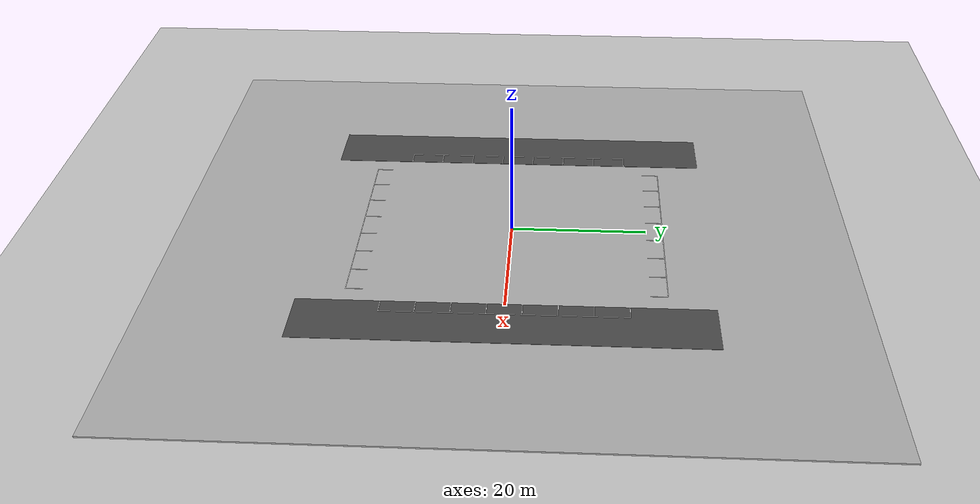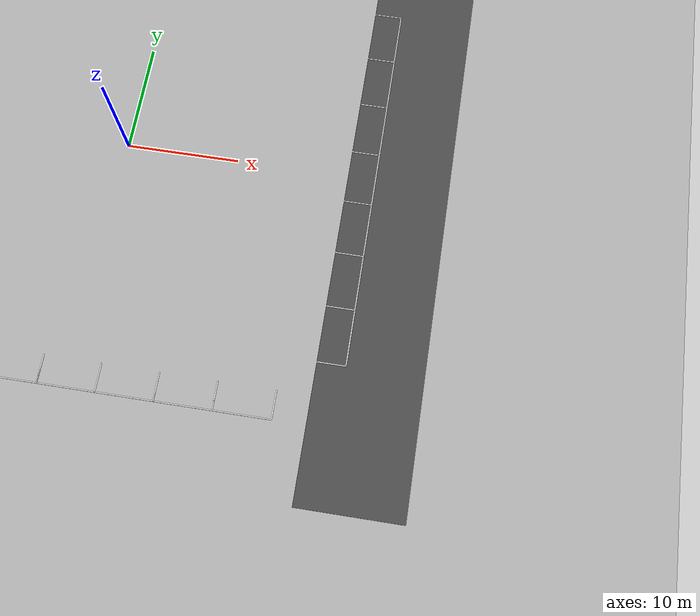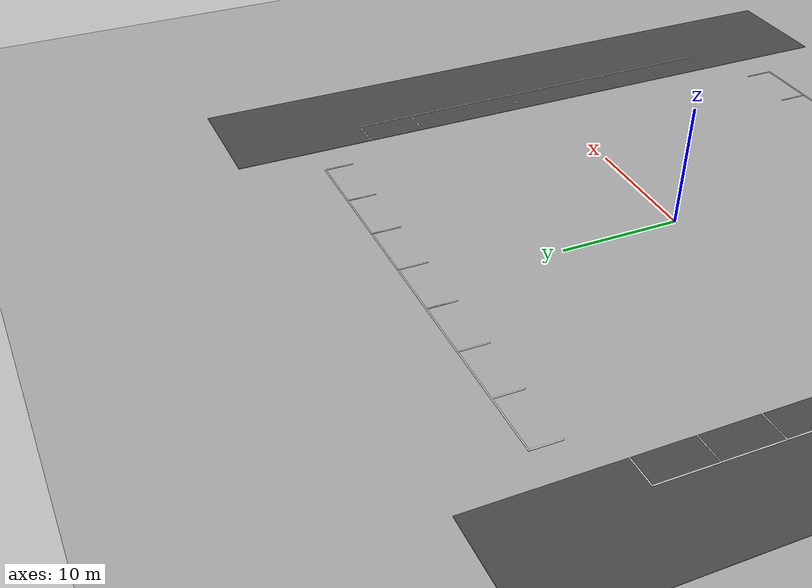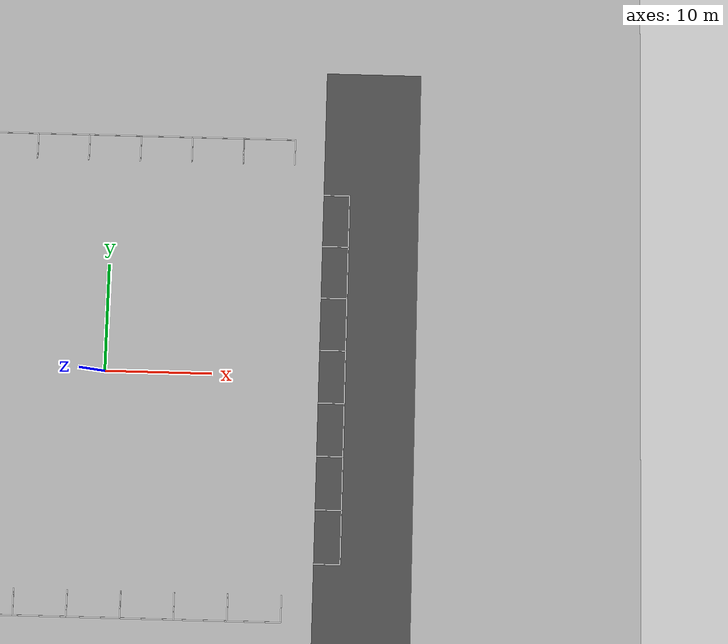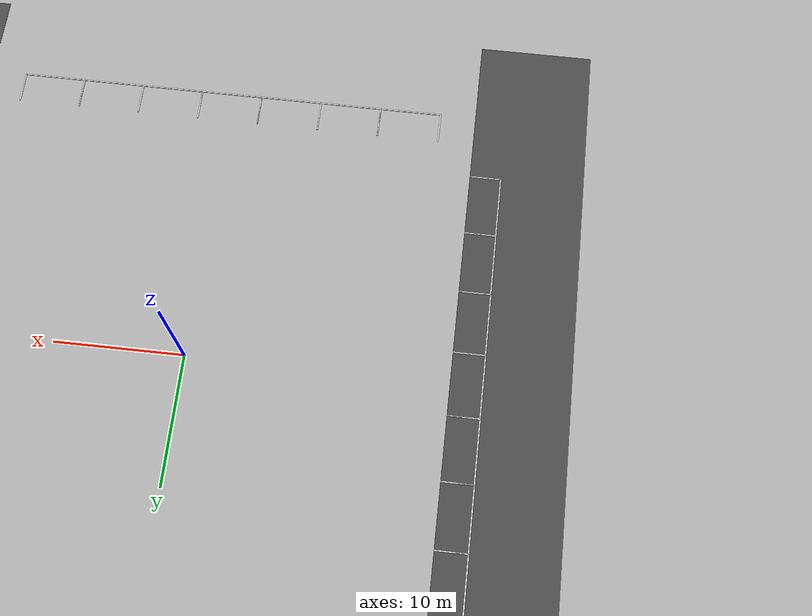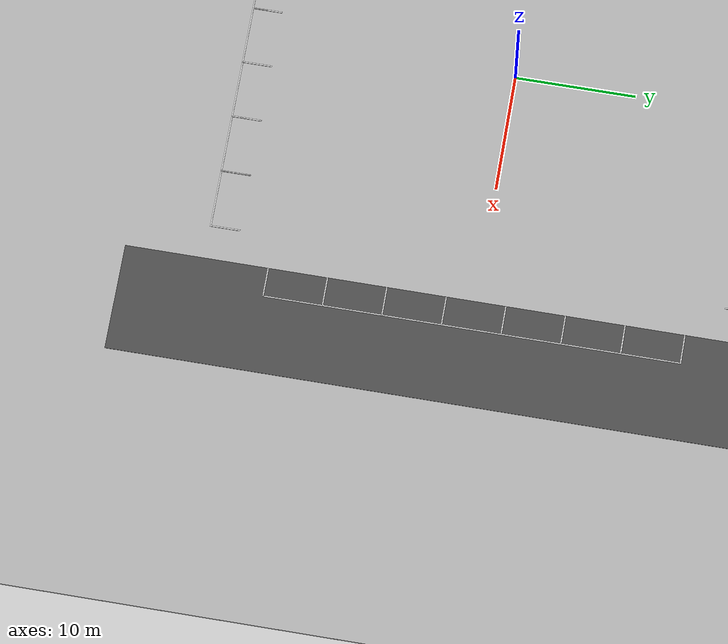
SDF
<?xml version="1.0" encoding="UTF-8"?>
<!-- |    This document was autogenerated by xacro4sdf from custom_world.world.xmacro  | -->
<!-- |    EDITING THIS FILE BY HAND IS NOT RECOMMENDED                                 | -->
<sdf version="1.4">
	<!-- per il park1-->
	<!-- per il park2-->
	<!-- per il park3-->
	<!-- per il park4-->
	<world name="custom_world">
		<include>
			<uri>model://ground_plane</uri>
		</include>
		<!--PARK1-->
		<!--parcheggio centrale-->
		<include>
			<uri>/home/studenti/catkin_ws/src/autopark/models/parcheggio</uri>
			<name>parking1</name>
			<pose> 22.45 0 0 0 0 0 </pose>
			<static>0</static>
		</include>
		<!--tre parcheggi a destra-->
		<include>
			<uri>/home/studenti/catkin_ws/src/autopark/models/parcheggio</uri>
			<name>parking2</name>
			<pose> 22.45 4.9 0 0 0 0 </pose>
			<static>0</static>
		</include>
		<include>
			<uri>/home/studenti/catkin_ws/src/autopark/models/parcheggio</uri>
			<name>parking3</name>
			<pose> 22.45 9.8 0 0 0 0 </pose>
			<static>0</static>
		</include>
		<include>
			<uri>/home/studenti/catkin_ws/src/autopark/models/parcheggio</uri>
			<name>parking4</name>
			<pose> 22.45 14.7 0 0 0 0 </pose>
			<static>0</static>
		</include>
		<!--tre parcheggi a sinistra-->
		<include>
			<uri>/home/studenti/catkin_ws/src/autopark/models/parcheggio</uri>
			<name>parking5</name>
			<pose> 22.45 -4.9 0 0 0 0 </pose>
			<static>0</static>
		</include>
		<include>
			<uri>/home/studenti/catkin_ws/src/autopark/models/parcheggio</uri>
			<name>parking6</name>
			<pose> 22.45 -9.8 0 0 0 0 </pose>
			<static>0</static>
		</include>
		<include>
			<uri>/home/studenti/catkin_ws/src/autopark/models/parcheggio</uri>
			<name>parking7</name>
			<pose> 22.45 -14.7 0 0 0 0 </pose>
			<static>0</static>
		</include>
		<!--PARK2-->
		<!--parcheggio centrale-->
		<include>
			<uri>/home/studenti/catkin_ws/src/autopark/models/parcheggio</uri>
			<name>parking8</name>
			<pose> -22.45 0 0 0 0 3.14 </pose>
			<static>0</static>
		</include>
		<!--tre parcheggi a destra-->
		<include>
			<uri>/home/studenti/catkin_ws/src/autopark/models/parcheggio</uri>
			<name>parking9</name>
			<pose> -22.45 4.9 0 0 0 3.14 </pose>
			<static>0</static>
		</include>
		<include>
			<uri>/home/studenti/catkin_ws/src/autopark/models/parcheggio</uri>
			<name>parking10</name>
			<pose> -22.45 9.8 0 0 0 3.14 </pose>
			<static>0</static>
		</include>
		<include>
			<uri>/home/studenti/catkin_ws/src/autopark/models/parcheggio</uri>
			<name>parking11</name>
			<pose> -22.45 14.7 0 0 0 3.14 </pose>
			<static>0</static>
		</include>
		<!--tre parcheggi a sinistra-->
		<include>
			<uri>/home/studenti/catkin_ws/src/autopark/models/parcheggio</uri>
			<name>parking12</name>
			<pose> -22.45 -4.9 0 0 0 3.14 </pose>
			<static>0</static>
		</include>
		<include>
			<uri>/home/studenti/catkin_ws/src/autopark/models/parcheggio</uri>
			<name>parking13</name>
			<pose> -22.45 -9.8 0 0 0 3.14 </pose>
			<static>0</static>
		</include>
		<include>
			<uri>/home/studenti/catkin_ws/src/autopark/models/parcheggio</uri>
			<name>parking14</name>
			<pose> -22.45 -14.7 0 0 0 3.14 </pose>
			<static>0</static>
		</include>
		<!--PARK3-->
		<!--parcheggio centrale-->
		<include>
			<uri>/home/studenti/catkin_ws/src/autopark/models/parcheggio</uri>
			<name>parking15</name>
			<pose> 0 22.45 0 0 0 1.57 </pose>
			<static>0</static>
		</include>
		<!--tre parcheggi a destra-->
		<include>
			<uri>/home/studenti/catkin_ws/src/autopark/models/parcheggio</uri>
			<name>parking16</name>
			<pose> 4.9 22.45 0 0 0 1.57 </pose>
			<static>0</static>
		</include>
		<include>
			<uri>/home/studenti/catkin_ws/src/autopark/models/parcheggio</uri>
			<name>parking17</name>
			<pose> 9.8 22.45 0 0 0 1.57 </pose>
			<static>0</static>
		</include>
		<include>
			<uri>/home/studenti/catkin_ws/src/autopark/models/parcheggio</uri>
			<name>parking18</name>
			<pose> 14.7 22.45 0 0 0 1.57 </pose>
			<static>0</static>
		</include>
		<!--tre parcheggi a sinistra-->
		<include>
			<uri>/home/studenti/catkin_ws/src/autopark/models/parcheggio</uri>
			<name>parking19</name>
			<pose> -4.9 22.45 0 0 0 1.57 </pose>
			<static>0</static>
		</include>
		<include>
			<uri>/home/studenti/catkin_ws/src/autopark/models/parcheggio</uri>
			<name>parking20</name>
			<pose> -9.8 22.45 0 0 0 1.57 </pose>
			<static>0</static>
		</include>
		<include>
			<uri>/home/studenti/catkin_ws/src/autopark/models/parcheggio</uri>
			<name>parking21</name>
			<pose> -14.7 22.45 0 0 0 1.57 </pose>
			<static>0</static>
		</include>
		<!--PARK3-->
		<!--parcheggio centrale-->
		<include>
			<uri>/home/studenti/catkin_ws/src/autopark/models/parcheggio</uri>
			<name>parking22</name>
			<pose> 0 -22.45 0 0 0 -1.57 </pose>
			<static>0</static>
		</include>
		<!--tre parcheggi a destra-->
		<include>
			<uri>/home/studenti/catkin_ws/src/autopark/models/parcheggio</uri>
			<name>parking23</name>
			<pose> 4.9 -22.45 0 0 0 -1.57 </pose>
			<static>0</static>
		</include>
		<include>
			<uri>/home/studenti/catkin_ws/src/autopark/models/parcheggio</uri>
			<name>parking24</name>
			<pose> 9.8 -22.45 0 0 0 -1.57 </pose>
			<static>0</static>
		</include>
		<include>
			<uri>/home/studenti/catkin_ws/src/autopark/models/parcheggio</uri>
			<name>parking25 </name>
			<pose> 14.7 -22.45 0 0 0 -1.57 </pose>
			<static>0</static>
		</include>
		<!--tre parcheggi a sinistra-->
		<include>
			<uri>/home/studenti/catkin_ws/src/autopark/models/parcheggio</uri>
			<name>parking26</name>
			<pose> -4.9 -22.45 0 0 0 -1.57 </pose>
			<static>0</static>
		</include>
		<include>
			<uri>/home/studenti/catkin_ws/src/autopark/models/parcheggio</uri>
			<name>parking27</name>
			<pose> -9.8 -22.45 0 0 0 -1.57 </pose>
			<static>0</static>
		</include>
		<include>
			<uri>/home/studenti/catkin_ws/src/autopark/models/parcheggio</uri>
			<name>parking28</name>
			<pose> -14.7 -22.45 0 0 0 -1.57 </pose>
			<static>0</static>
		</include>
		<!--asfalto -->
		<include>
			<uri>/home/studenti/catkin_ws/src/autopark/models/asphalt_plane_esteso</uri>
			<name>asfalto1</name>
			<pose> 24.5 0 0 0 0 0 </pose>
		</include>
		<include>
			<uri>/home/studenti/catkin_ws/src/autopark/models/asphalt_plane</uri>
			<name>asfalto2</name>
			<pose> 0 24.5 0 0 0 1.57</pose>
		</include>
		<include>
			<uri>/home/studenti/catkin_ws/src/autopark/models/asphalt_plane</uri>
			<name>asfalto3</name>
			<pose> 0 -24.5 0 0 0 1.57</pose>
		</include>
		<include>
			<uri>/home/studenti/catkin_ws/src/autopark/models/asphalt_plane_esteso</uri>
			<name>asfalto4</name>
			<pose> -24.5 0 0 0 0 0</pose>
		</include>
		<include>
			<uri>/home/studenti/catkin_ws/src/autopark/models/pratino</uri>
			<name>prato</name>
			<pose> 0 0 0 0 0 0</pose>
		</include>
		 --&gt;

	</world>
</sdf>

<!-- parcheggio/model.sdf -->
<!-- |    This document was autogenerated by xacro4sdf from model.sdf.xmacro           | -->
<!-- |    EDITING THIS FILE BY HAND IS NOT RECOMMENDED                                 | -->
<sdf version="1.7">
	<!--creo una lista di proprietà utili-->
	<model name="parcheggio">
		<link name="link_1">
			<pose> -1.2 -2.45 0 0 -0 0</pose>
			<gravity>0</gravity>
			<self_collide>0</self_collide>
			<kinematic>0</kinematic>
			<enable_wind>0</enable_wind>
			<visual name="visual">
				<pose>0 0 0 0 -0 0</pose>
				<geometry>
					<box>
						<size>2.5 0.1 0.305</size>
					</box>
				</geometry>
				<material>
					<specular>0.1 0.1 0.1 1</specular>
					<diffuse>0 0 0 1</diffuse>
					<lighting>0</lighting>
					<script>
						<uri>file://media/materials/scripts/Gazebo.material</uri>
						<name>Gazebo/White</name>
					</script>
					<shader type="pixel">
						<normal_map>default</normal_map>
					</shader>
					<emissive>0 0 0 1</emissive>
					<ambient>0 0 0 1</ambient>
				</material>
				<transparency>0</transparency>
				<cast_shadows>1</cast_shadows>
			</visual>
		</link>
		<static>0</static>
		<allow_auto_disable>1</allow_auto_disable>
		<link name="link_2">
			<pose>0 0 0 0 -0 0</pose>
			<gravity>0</gravity>
			<self_collide>0</self_collide>
			<kinematic>0</kinematic>
			<enable_wind>0</enable_wind>
			<visual name="visual">
				<pose>0 0 0 0 -0 0</pose>
				<geometry>
					<box>
						<size>0.1 5.0 0.305</size>
					</box>
				</geometry>
				<material>
					<specular>0.1 0.1 0.1 1</specular>
					<diffuse>0 0 0 1</diffuse>
					<lighting>0</lighting>
					<script>
						<uri>file://media/materials/scripts/Gazebo.material</uri>
						<name>Gazebo/White</name>
					</script>
					<shader type="pixel">
						<normal_map>default</normal_map>
					</shader>
					<emissive>0 0 0 1</emissive>
					<ambient>0 0 0 1</ambient>
				</material>
				<transparency>0</transparency>
				<cast_shadows>1</cast_shadows>
			</visual>
		</link>
		<static>0</static>
		<allow_auto_disable>1</allow_auto_disable>
		<link name="link_3">
			<pose>-1.2 2.45 0 0 -0 0</pose>
			<gravity>0</gravity>
			<self_collide>0</self_collide>
			<kinematic>0</kinematic>
			<enable_wind>0</enable_wind>
			<visual name="visual">
				<pose>0 0 0 0 -0 0</pose>
				<geometry>
					<box>
						<size>2.5 0.1 0.305</size>
					</box>
				</geometry>
				<material>
					<specular>0.1 0.1 0.1 1</specular>
					<diffuse>0 0 0 1</diffuse>
					<lighting>0</lighting>
					<script>
						<uri>file://media/materials/scripts/Gazebo.material</uri>
						<name>Gazebo/White</name>
					</script>
					<shader type="pixel">
						<normal_map>default</normal_map>
					</shader>
					<emissive>0 0 0 1</emissive>
					<ambient>0 0 0 1</ambient>
				</material>
				<transparency>0</transparency>
				<cast_shadows>1</cast_shadows>
			</visual>
		</link>
		<static>0</static>
		<allow_auto_disable>1</allow_auto_disable>
	</model>
</sdf>

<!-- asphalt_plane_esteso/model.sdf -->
<sdf version='1.7'>
  <model name='asfalto1'>
    <link name='link'>
      <self_collide>0</self_collide>
      <enable_wind>0</enable_wind>
      <kinematic>0</kinematic>
      <pose>0 0 0 0 -0 0</pose>
      <gravity>1</gravity>
      <inertial>
        <mass>1</mass>
        <pose>0 0 0 0 -0 0</pose>
        <inertia>
          <ixx>1</ixx>
          <ixy>0</ixy>
          <ixz>0</ixz>
          <iyy>1</iyy>
          <iyz>0</iyz>
          <izz>1</izz>
        </inertia>
      </inertial>
      <visual name='visual'>
        <cast_shadows>0</cast_shadows>
        <geometry>
          <box>
            <size>9 58 0.3</size>
          </box>
        </geometry>
        <material>
          <script>
            <uri>https://fuel.ignitionrobotics.org/1.0/openrobotics/models/asphalt plane/2/files/materials/scripts</uri>
            <uri>https://fuel.ignitionrobotics.org/1.0/openrobotics/models/asphalt plane/2/files/materials/textures</uri>
            <name>vrc/asphalt</name>
          </script>
          <shader type='pixel'>
            <normal_map>__default__</normal_map>
          </shader>
          <ambient>0.5 0.5 0.5 1</ambient>
          <diffuse>0.5 0.5 0.5 1</diffuse>
          <specular>0.2 0.2 0.2 1</specular>
          <emissive>0 0 0 1</emissive>
        </material>
        <pose>0 0 0 0 -0 0</pose>
        <transparency>0</transparency>
      </visual>
      <collision name='collision'>
        <laser_retro>0</laser_retro>
        <max_contacts>10</max_contacts>
        <pose>0 0 0 0 -0 0</pose>
        <geometry>
          <box>
            <size>9 58 0.3</size>
          </box>
        </geometry>
        <surface>
          <friction>
            <ode>
              <mu>1</mu>
              <mu2>1</mu2>
              <fdir1>0 0 0</fdir1>
              <slip1>0</slip1>
              <slip2>0</slip2>
            </ode>
            <torsional>
              <coefficient>1</coefficient>
              <patch_radius>0</patch_radius>
              <surface_radius>0</surface_radius>
              <use_patch_radius>1</use_patch_radius>
              <ode>
                <slip>0</slip>
              </ode>
            </torsional>
          </friction>
          <bounce>
            <restitution_coefficient>0</restitution_coefficient>
            <threshold>1e+06</threshold>
          </bounce>
          <contact>
            <collide_without_contact>0</collide_without_contact>
            <collide_without_contact_bitmask>1</collide_without_contact_bitmask>
            <collide_bitmask>1</collide_bitmask>
            <ode>
              <soft_cfm>0</soft_cfm>
              <soft_erp>0.2</soft_erp>
              <kp>1e+13</kp>
              <kd>1</kd>
              <max_vel>0.01</max_vel>
              <min_depth>0</min_depth>
            </ode>
            <bullet>
              <split_impulse>1</split_impulse>
              <split_impulse_penetration_threshold>-0.01</split_impulse_penetration_threshold>
              <soft_cfm>0</soft_cfm>
              <soft_erp>0.2</soft_erp>
              <kp>1e+13</kp>
              <kd>1</kd>
            </bullet>
          </contact>
        </surface>
      </collision>
    </link>
    <static>1</static>
    <allow_auto_disable>1</allow_auto_disable>
  </model>
</sdf>

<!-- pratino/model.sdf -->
<sdf version='1.7'>
  <model name='pratino'>
    <link name='link_1'>
      <pose>0 0 0 0 -0 0</pose>
      <gravity>0</gravity>
      <self_collide>0</self_collide>
      <kinematic>0</kinematic>
      <enable_wind>0</enable_wind>
      <visual name='visual'>
        <pose>0 0 0 0 -0 0</pose>
        <geometry>
          <box>
            <size>100 100 0.2</size>
          </box>
        </geometry>
        <material>
          <lighting>1</lighting>
          <script>
            <uri>model://pratino/materials/scripts</uri>
            <uri>model://pratino/materials/textures</uri>
            <name>pratoMaterial/Diffuse</name>
          </script>
          <shader type='pixel'>
            <normal_map>__default__</normal_map>
          </shader>
          <ambient>0 1 0.3 1</ambient>
          <diffuse>0.7 0.7 0.7 1</diffuse>
          <specular>0.01 0.01 0.01 1</specular>
          <emissive>0 0 0 1</emissive>
        </material>
        <transparency>0</transparency>
        <cast_shadows>1</cast_shadows>
      </visual>
    </link>
    <static>0</static>
    <allow_auto_disable>1</allow_auto_disable>
  </model>
</sdf>
